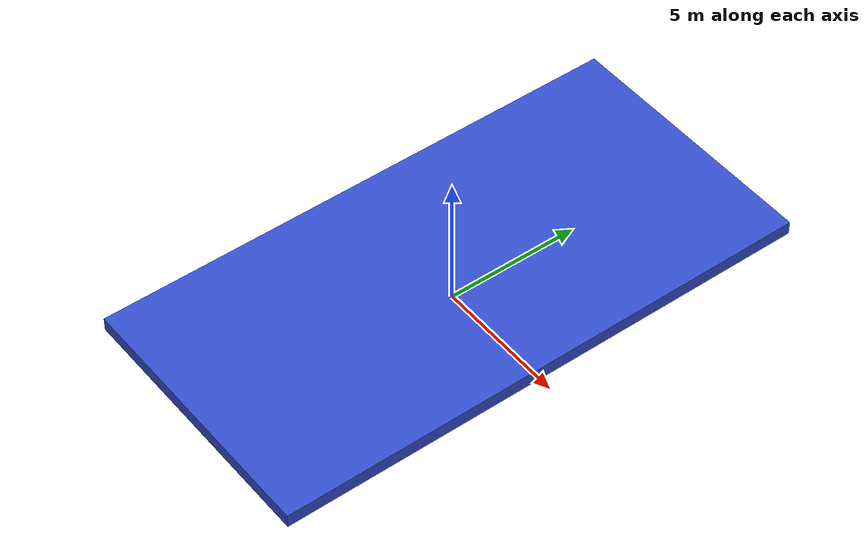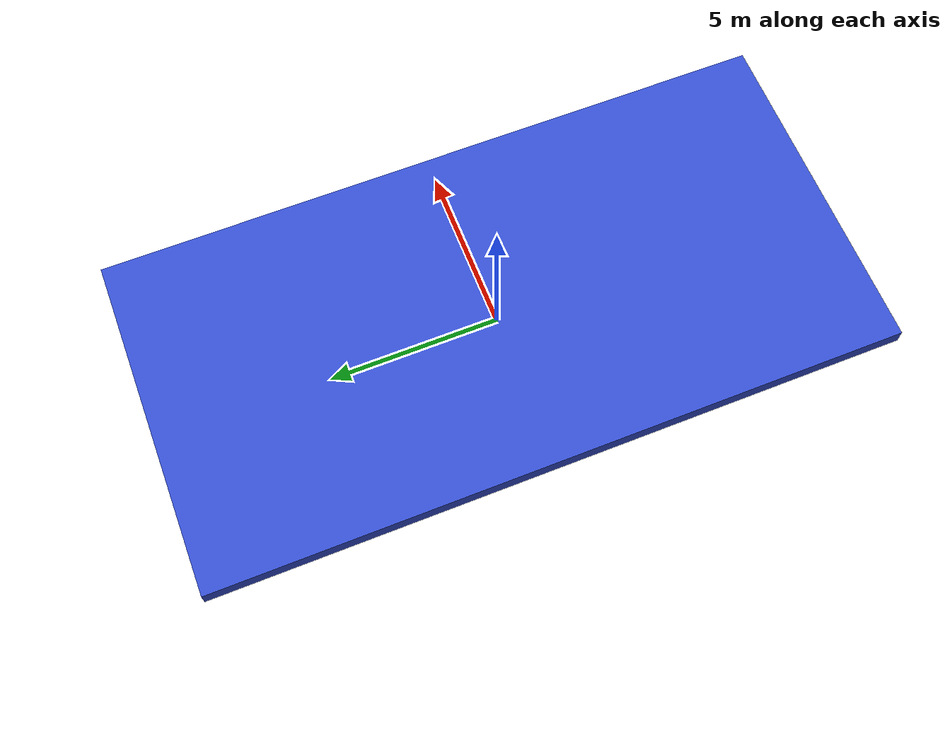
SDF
<?xml version="1.0" ?>
<sdf version="1.6">
  <model name="thin carpet">
    <pose>0 0 1 0 0 0</pose>
    <static>true</static>

    <link name="link">
      <inertial>
        <mass>1.0</mass>
      </inertial>

      <collision name="collision">
        <geometry>
          <box>
            <size>10 20 0.5</size>
          </box>
        </geometry>
      </collision>

      <visual name="visual">
        <geometry>
          <box>
            <size>10 20 0.5</size>
          </box>
        </geometry>
        <material>
          <ambient>0.2 0.3 0.8 1</ambient>
          <diffuse>0.2 0.3 0.8 1</diffuse>
        </material>
      </visual>
    </link>
  </model>
</sdf>
